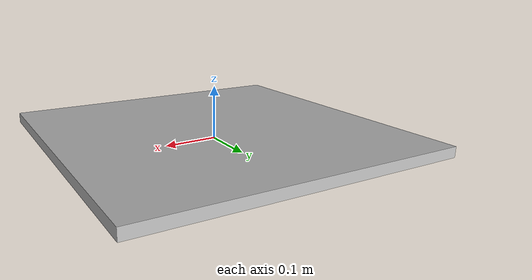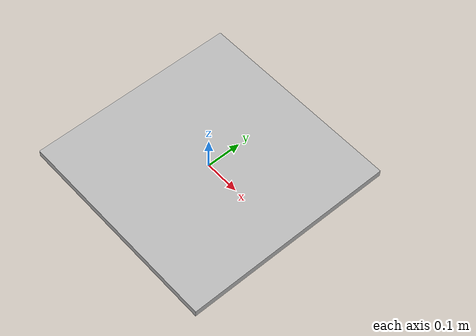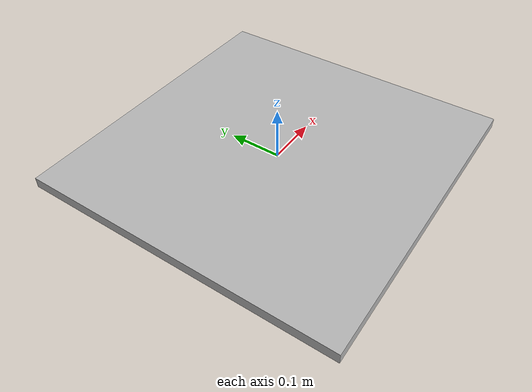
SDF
<?xml version="1.0"?>
<sdf version="1.6">
  <model name="landing_pad">
    <pose>0 0 0.01 0 0 0</pose>
    <static>true</static>
    <link name="link">
      <inertial>
        <mass>0.5</mass>
        <inertia>
          <ixx>0.001</ixx>
          <ixy>0</ixy>
          <ixz>0</ixz>
          <iyy>0.001</iyy>
          <iyz>0</iyz>
          <izz>0.001</izz>
        </inertia>
      </inertial>
      <collision name="collision">
        <geometry>
          <box>
            <size>0.6 0.6 0.02</size>
          </box>
        </geometry>
      </collision>
      <visual name="visual">
        <geometry>
          <box>
            <size>0.6 0.6 0.02</size>
          </box>
        </geometry>
        <material>
          <script>
            <uri>model://landing_pad/materials/scripts</uri>
            <uri>model://landing_pad/materials/textures</uri>
            <name>Cube/landing_pad</name>
          </script>
        </material>
      </visual>
    </link>
    <!-- NOTE: 发布gazebo中的位姿信息 -->
    <plugin name="p3d_base_controller" filename="libgazebo_ros_p3d.so">
      <alwaysOn>true</alwaysOn>
      <updateRate>30.0</updateRate>
      <bodyName>link</bodyName>
      <topicName>ground_truth/landing_pad</topicName>
      <gaussianNoise>0.00</gaussianNoise>
      <frameName>world</frameName>
      <xyzOffsets>0 0 0</xyzOffsets>
      <rpyOffsets>0 0 0</rpyOffsets>
    </plugin>

  </model>
</sdf>
